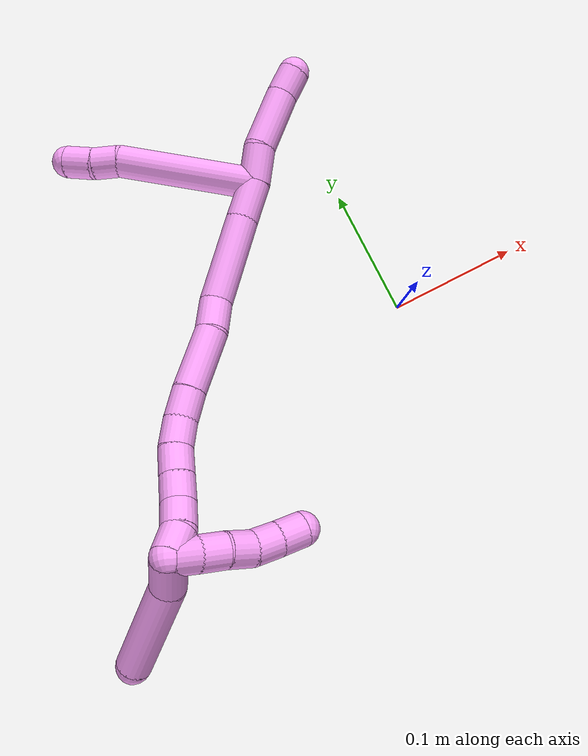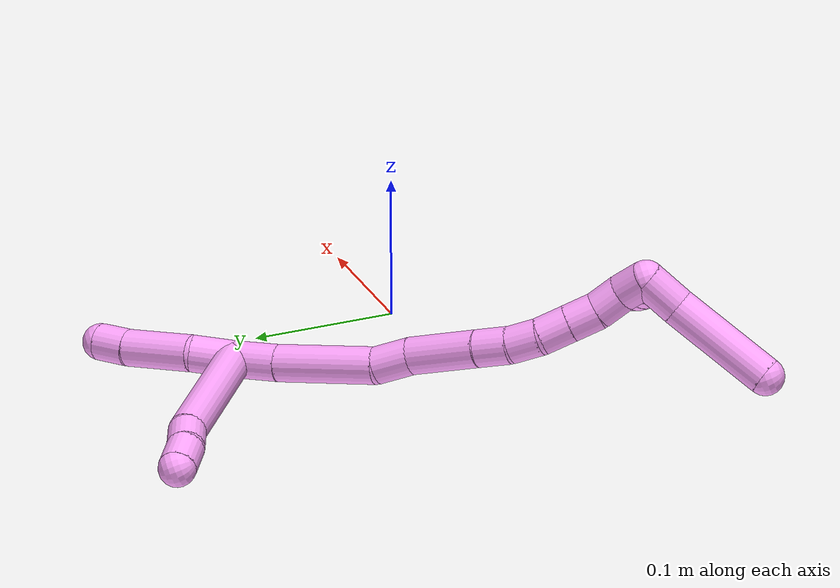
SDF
<sdf version="1.7">
 <world name="default">
  <model name="4">
   <static>0</static>
   <link name="4">
    <collision name="collision-cylinder-e_1_2_8">
     <pose>0.036772 -0.035987 0.015452 1.16523 0.753901 0.510332</pose>
     <geometry><cylinder><radius>0.0125</radius><length>0.107443</length></cylinder></geometry>
     <surface>
      <friction><ode><mu>1.16</mu><mu2>1.16</mu2><slip1>0</slip1><slip2>0</slip2></ode></friction>
      <contact><ode><kp>1e+06</kp><kd>1</kd><max_vel>0</max_vel><min_depth>0.001</min_depth></ode></contact>
     </surface>
    </collision>
    <visual name="visual-cylinder-e_1_2_8">
     <pose>0.036772 -0.035987 0.015452 1.16523 0.753901 0.510332</pose>
     <geometry><cylinder><radius>0.0125</radius><length>0.107443</length></cylinder></geometry>
     <material><ambient>1 0.65098 0.996078 1</ambient></material>
    </visual>
    <collision name="collision-cylinder-e_2_8_9">
     <pose>0.079487 -0.080102 0.031838 1.45625 0.628302 0.563911</pose>
     <geometry><cylinder><radius>0.0125</radius><length>0.020224</length></cylinder></geometry>
     <surface>
      <friction><ode><mu>1.16</mu><mu2>1.16</mu2><slip1>0</slip1><slip2>0</slip2></ode></friction>
      <contact><ode><kp>1e+06</kp><kd>1</kd><max_vel>0</max_vel><min_depth>0.001</min_depth></ode></contact>
     </surface>
    </collision>
    <visual name="visual-cylinder-e_2_8_9">
     <pose>0.079487 -0.080102 0.031838 1.45625 0.628302 0.563911</pose>
     <geometry><cylinder><radius>0.0125</radius><length>0.020224</length></cylinder></geometry>
     <material><ambient>1 0.65098 0.996078 1</ambient></material>
    </visual>
    <collision name="collision-cylinder-e_3_9_6">
     <pose>0.091705 -0.096861 0.036063 1.20672 0.596699 0.417645</pose>
     <geometry><cylinder><radius>0.0125</radius><length>0.022333</length></cylinder></geometry>
     <surface>
      <friction><ode><mu>1.16</mu><mu2>1.16</mu2><slip1>0</slip1><slip2>0</slip2></ode></friction>
      <contact><ode><kp>1e+06</kp><kd>1</kd><max_vel>0</max_vel><min_depth>0.001</min_depth></ode></contact>
     </surface>
    </collision>
    <visual name="visual-cylinder-e_3_9_6">
     <pose>0.091705 -0.096861 0.036063 1.20672 0.596699 0.417645</pose>
     <geometry><cylinder><radius>0.0125</radius><length>0.022333</length></cylinder></geometry>
     <material><ambient>1 0.65098 0.996078 1</ambient></material>
    </visual>
    <collision name="collision-cylinder-e_1_2_10">
     <pose>0.001768 0.006601 0.012688 -0.479701 0.12299 -0.030114</pose>
     <geometry><cylinder><radius>0.0125</radius><length>0.028822</length></cylinder></geometry>
     <surface>
      <friction><ode><mu>1.16</mu><mu2>1.16</mu2><slip1>0</slip1><slip2>0</slip2></ode></friction>
      <contact><ode><kp>1e+06</kp><kd>1</kd><max_vel>0</max_vel><min_depth>0.001</min_depth></ode></contact>
     </surface>
    </collision>
    <visual name="visual-cylinder-e_1_2_10">
     <pose>0.001768 0.006601 0.012688 -0.479701 0.12299 -0.030114</pose>
     <geometry><cylinder><radius>0.0125</radius><length>0.028822</length></cylinder></geometry>
     <material><ambient>1 0.65098 0.996078 1</ambient></material>
    </visual>
    <collision name="collision-cylinder-e_2_10_11">
     <pose>7e-06 0.025356 0.04614 -0.529604 -0.145631 0.039555</pose>
     <geometry><cylinder><radius>0.0125</radius><length>0.048635</length></cylinder></geometry>
     <surface>
      <friction><ode><mu>1.16</mu><mu2>1.16</mu2><slip1>0</slip1><slip2>0</slip2></ode></friction>
      <contact><ode><kp>1e+06</kp><kd>1</kd><max_vel>0</max_vel><min_depth>0.001</min_depth></ode></contact>
     </surface>
    </collision>
    <visual name="visual-cylinder-e_2_10_11">
     <pose>7e-06 0.025356 0.04614 -0.529604 -0.145631 0.039555</pose>
     <geometry><cylinder><radius>0.0125</radius><length>0.048635</length></cylinder></geometry>
     <material><ambient>1 0.65098 0.996078 1</ambient></material>
    </visual>
    <collision name="collision-cylinder-e_3_11_5">
     <pose>-0.005205 0.044184 0.075831 -0.641876 -0.149842 0.049895</pose>
     <geometry><cylinder><radius>0.0125</radius><length>0.022543</length></cylinder></geometry>
     <surface>
      <friction><ode><mu>1.16</mu><mu2>1.16</mu2><slip1>0</slip1><slip2>0</slip2></ode></friction>
      <contact><ode><kp>1e+06</kp><kd>1</kd><max_vel>0</max_vel><min_depth>0.001</min_depth></ode></contact>
     </surface>
    </collision>
    <visual name="visual-cylinder-e_3_11_5">
     <pose>-0.005205 0.044184 0.075831 -0.641876 -0.149842 0.049895</pose>
     <geometry><cylinder><radius>0.0125</radius><length>0.022543</length></cylinder></geometry>
     <material><ambient>1 0.65098 0.996078 1</ambient></material>
    </visual>
    <collision name="collision-cylinder-e_1_2_12">
     <pose>0.001191 -0.007728 -0.014082 2.63971 0.073997 0.286808</pose>
     <geometry><cylinder><radius>0.0125</radius><length>0.032215</length></cylinder></geometry>
     <surface>
      <friction><ode><mu>1.16</mu><mu2>1.16</mu2><slip1>0</slip1><slip2>0</slip2></ode></friction>
      <contact><ode><kp>1e+06</kp><kd>1</kd><max_vel>0</max_vel><min_depth>0.001</min_depth></ode></contact>
     </surface>
    </collision>
    <visual name="visual-cylinder-e_1_2_12">
     <pose>0.001191 -0.007728 -0.014082 2.63971 0.073997 0.286808</pose>
     <geometry><cylinder><radius>0.0125</radius><length>0.032215</length></cylinder></geometry>
     <material><ambient>1 0.65098 0.996078 1</ambient></material>
    </visual>
    <collision name="collision-cylinder-e_2_12_13">
     <pose>0.005713 -0.030483 -0.059303 2.69197 0.096045 0.414292</pose>
     <geometry><cylinder><radius>0.0125</radius><length>0.06947</length></cylinder></geometry>
     <surface>
      <friction><ode><mu>1.16</mu><mu2>1.16</mu2><slip1>0</slip1><slip2>0</slip2></ode></friction>
      <contact><ode><kp>1e+06</kp><kd>1</kd><max_vel>0</max_vel><min_depth>0.001</min_depth></ode></contact>
     </surface>
    </collision>
    <visual name="visual-cylinder-e_2_12_13">
     <pose>0.005713 -0.030483 -0.059303 2.69197 0.096045 0.414292</pose>
     <geometry><cylinder><radius>0.0125</radius><length>0.06947</length></cylinder></geometry>
     <material><ambient>1 0.65098 0.996078 1</ambient></material>
    </visual>
    <collision name="collision-cylinder-e_3_13_14">
     <pose>0.010849 -0.047564 -0.102762 2.97639 0.14354 1.43014</pose>
     <geometry><cylinder><radius>0.0125</radius><length>0.025241</length></cylinder></geometry>
     <surface>
      <friction><ode><mu>1.16</mu><mu2>1.16</mu2><slip1>0</slip1><slip2>0</slip2></ode></friction>
      <contact><ode><kp>1e+06</kp><kd>1</kd><max_vel>0</max_vel><min_depth>0.001</min_depth></ode></contact>
     </surface>
    </collision>
    <visual name="visual-cylinder-e_3_13_14">
     <pose>0.010849 -0.047564 -0.102762 2.97639 0.14354 1.43014</pose>
     <geometry><cylinder><radius>0.0125</radius><length>0.025241</length></cylinder></geometry>
     <material><ambient>1 0.65098 0.996078 1</ambient></material>
    </visual>
    <collision name="collision-cylinder-e_4_14_15">
     <pose>0.018045 -0.05809 -0.137132 2.77476 0.224371 1.09156</pose>
     <geometry><cylinder><radius>0.0125</radius><length>0.048457</length></cylinder></geometry>
     <surface>
      <friction><ode><mu>1.16</mu><mu2>1.16</mu2><slip1>0</slip1><slip2>0</slip2></ode></friction>
      <contact><ode><kp>1e+06</kp><kd>1</kd><max_vel>0</max_vel><min_depth>0.001</min_depth></ode></contact>
     </surface>
    </collision>
    <visual name="visual-cylinder-e_4_14_15">
     <pose>0.018045 -0.05809 -0.137132 2.77476 0.224371 1.09156</pose>
     <geometry><cylinder><radius>0.0125</radius><length>0.048457</length></cylinder></geometry>
     <material><ambient>1 0.65098 0.996078 1</ambient></material>
    </visual>
    <collision name="collision-cylinder-e_5_15_16">
     <pose>0.025153 -0.070319 -0.169763 2.80043 0.151739 0.831175</pose>
     <geometry><cylinder><radius>0.0125</radius><length>0.022717</length></cylinder></geometry>
     <surface>
      <friction><ode><mu>1.16</mu><mu2>1.16</mu2><slip1>0</slip1><slip2>0</slip2></ode></friction>
      <contact><ode><kp>1e+06</kp><kd>1</kd><max_vel>0</max_vel><min_depth>0.001</min_depth></ode></contact>
     </surface>
    </collision>
    <visual name="visual-cylinder-e_5_15_16">
     <pose>0.025153 -0.070319 -0.169763 2.80043 0.151739 0.831175</pose>
     <geometry><cylinder><radius>0.0125</radius><length>0.022717</length></cylinder></geometry>
     <material><ambient>1 0.65098 0.996078 1</ambient></material>
    </visual>
    <collision name="collision-cylinder-e_6_16_17">
     <pose>0.028512 -0.075769 -0.19066 2.97892 0.155797 1.52747</pose>
     <geometry><cylinder><radius>0.0125</radius><length>0.021166</length></cylinder></geometry>
     <surface>
      <friction><ode><mu>1.16</mu><mu2>1.16</mu2><slip1>0</slip1><slip2>0</slip2></ode></friction>
      <contact><ode><kp>1e+06</kp><kd>1</kd><max_vel>0</max_vel><min_depth>0.001</min_depth></ode></contact>
     </surface>
    </collision>
    <visual name="visual-cylinder-e_6_16_17">
     <pose>0.028512 -0.075769 -0.19066 2.97892 0.155797 1.52747</pose>
     <geometry><cylinder><radius>0.0125</radius><length>0.021166</length></cylinder></geometry>
     <material><ambient>1 0.65098 0.996078 1</ambient></material>
    </visual>
    <collision name="collision-cylinder-e_7_17_18">
     <pose>0.030757 -0.077 -0.211249 -3.09664 0.058607 -1.83305</pose>
     <geometry><cylinder><radius>0.0125</radius><length>0.0206</length></cylinder></geometry>
     <surface>
      <friction><ode><mu>1.16</mu><mu2>1.16</mu2><slip1>0</slip1><slip2>0</slip2></ode></friction>
      <contact><ode><kp>1e+06</kp><kd>1</kd><max_vel>0</max_vel><min_depth>0.001</min_depth></ode></contact>
     </surface>
    </collision>
    <visual name="visual-cylinder-e_7_17_18">
     <pose>0.030757 -0.077 -0.211249 -3.09664 0.058607 -1.83305</pose>
     <geometry><cylinder><radius>0.0125</radius><length>0.0206</length></cylinder></geometry>
     <material><ambient>1 0.65098 0.996078 1</ambient></material>
    </visual>
    <collision name="collision-cylinder-e_8_18_19">
     <pose>0.031943 -0.076072 -0.231539 -3.0951 0.05805 -1.79112</pose>
     <geometry><cylinder><radius>0.0125</radius><length>0.020093</length></cylinder></geometry>
     <surface>
      <friction><ode><mu>1.16</mu><mu2>1.16</mu2><slip1>0</slip1><slip2>0</slip2></ode></friction>
      <contact><ode><kp>1e+06</kp><kd>1</kd><max_vel>0</max_vel><min_depth>0.001</min_depth></ode></contact>
     </surface>
    </collision>
    <visual name="visual-cylinder-e_8_18_19">
     <pose>0.031943 -0.076072 -0.231539 -3.0951 0.05805 -1.79112</pose>
     <geometry><cylinder><radius>0.0125</radius><length>0.020093</length></cylinder></geometry>
     <material><ambient>1 0.65098 0.996078 1</ambient></material>
    </visual>
    <collision name="collision-cylinder-e_9_19_20">
     <pose>0.034799 -0.073798 -0.251136 -2.95509 0.229135 -1.77669</pose>
     <geometry><cylinder><radius>0.0125</radius><length>0.020018</length></cylinder></geometry>
     <surface>
      <friction><ode><mu>1.16</mu><mu2>1.16</mu2><slip1>0</slip1><slip2>0</slip2></ode></friction>
      <contact><ode><kp>1e+06</kp><kd>1</kd><max_vel>0</max_vel><min_depth>0.001</min_depth></ode></contact>
     </surface>
    </collision>
    <visual name="visual-cylinder-e_9_19_20">
     <pose>0.034799 -0.073798 -0.251136 -2.95509 0.229135 -1.77669</pose>
     <geometry><cylinder><radius>0.0125</radius><length>0.020018</length></cylinder></geometry>
     <material><ambient>1 0.65098 0.996078 1</ambient></material>
    </visual>
    <collision name="collision-cylinder-e_10_20_1">
     <pose>0.041632 -0.072495 -0.269614 3.08499 0.472814 2.90765</pose>
     <geometry><cylinder><radius>0.0125</radius><length>0.020024</length></cylinder></geometry>
     <surface>
      <friction><ode><mu>1.16</mu><mu2>1.16</mu2><slip1>0</slip1><slip2>0</slip2></ode></friction>
      <contact><ode><kp>1e+06</kp><kd>1</kd><max_vel>0</max_vel><min_depth>0.001</min_depth></ode></contact>
     </surface>
    </collision>
    <visual name="visual-cylinder-e_10_20_1">
     <pose>0.041632 -0.072495 -0.269614 3.08499 0.472814 2.90765</pose>
     <geometry><cylinder><radius>0.0125</radius><length>0.020024</length></cylinder></geometry>
     <material><ambient>1 0.65098 0.996078 1</ambient></material>
    </visual>
    <collision name="collision-cylinder-e_1_1_21">
     <pose>0.036666 -0.070186 -0.277357 -1.18097 -1.26171 0.910541</pose>
     <geometry><cylinder><radius>0.0125</radius><length>0.02</length></cylinder></geometry>
     <surface>
      <friction><ode><mu>1.16</mu><mu2>1.16</mu2><slip1>0</slip1><slip2>0</slip2></ode></friction>
      <contact><ode><kp>1e+06</kp><kd>1</kd><max_vel>0</max_vel><min_depth>0.001</min_depth></ode></contact>
     </surface>
    </collision>
    <visual name="visual-cylinder-e_1_1_21">
     <pose>0.036666 -0.070186 -0.277357 -1.18097 -1.26171 0.910541</pose>
     <geometry><cylinder><radius>0.0125</radius><length>0.02</length></cylinder></geometry>
     <material><ambient>1 0.65098 0.996078 1</ambient></material>
    </visual>
    <collision name="collision-cylinder-e_2_21_22">
     <pose>0.018091 -0.06326 -0.275097 -1.30831 -1.13099 0.905784</pose>
     <geometry><cylinder><radius>0.0125</radius><length>0.02</length></cylinder></geometry>
     <surface>
      <friction><ode><mu>1.16</mu><mu2>1.16</mu2><slip1>0</slip1><slip2>0</slip2></ode></friction>
      <contact><ode><kp>1e+06</kp><kd>1</kd><max_vel>0</max_vel><min_depth>0.001</min_depth></ode></contact>
     </surface>
    </collision>
    <visual name="visual-cylinder-e_2_21_22">
     <pose>0.018091 -0.06326 -0.275097 -1.30831 -1.13099 0.905784</pose>
     <geometry><cylinder><radius>0.0125</radius><length>0.02</length></cylinder></geometry>
     <material><ambient>1 0.65098 0.996078 1</ambient></material>
    </visual>
    <collision name="collision-cylinder-e_3_22_23">
     <pose>-0.000585 -0.056559 -0.273214 -1.27884 -1.29701 1.0264</pose>
     <geometry><cylinder><radius>0.0125</radius><length>0.02</length></cylinder></geometry>
     <surface>
      <friction><ode><mu>1.16</mu><mu2>1.16</mu2><slip1>0</slip1><slip2>0</slip2></ode></friction>
      <contact><ode><kp>1e+06</kp><kd>1</kd><max_vel>0</max_vel><min_depth>0.001</min_depth></ode></contact>
     </surface>
    </collision>
    <visual name="visual-cylinder-e_3_22_23">
     <pose>-0.000585 -0.056559 -0.273214 -1.27884 -1.29701 1.0264</pose>
     <geometry><cylinder><radius>0.0125</radius><length>0.02</length></cylinder></geometry>
     <material><ambient>1 0.65098 0.996078 1</ambient></material>
    </visual>
    <collision name="collision-cylinder-e_4_23_24">
     <pose>-0.018778 -0.049714 -0.269518 -0.969825 -1.0286 0.578678</pose>
     <geometry><cylinder><radius>0.0125</radius><length>0.02</length></cylinder></geometry>
     <surface>
      <friction><ode><mu>1.16</mu><mu2>1.16</mu2><slip1>0</slip1><slip2>0</slip2></ode></friction>
      <contact><ode><kp>1e+06</kp><kd>1</kd><max_vel>0</max_vel><min_depth>0.001</min_depth></ode></contact>
     </surface>
    </collision>
    <visual name="visual-cylinder-e_4_23_24">
     <pose>-0.018778 -0.049714 -0.269518 -0.969825 -1.0286 0.578678</pose>
     <geometry><cylinder><radius>0.0125</radius><length>0.02</length></cylinder></geometry>
     <material><ambient>1 0.65098 0.996078 1</ambient></material>
    </visual>
    <collision name="collision-cylinder-e_5_24_4">
     <pose>-0.035555 -0.040683 -0.263472 -0.990925 -0.963321 0.550638</pose>
     <geometry><cylinder><radius>0.0125</radius><length>0.02</length></cylinder></geometry>
     <surface>
      <friction><ode><mu>1.16</mu><mu2>1.16</mu2><slip1>0</slip1><slip2>0</slip2></ode></friction>
      <contact><ode><kp>1e+06</kp><kd>1</kd><max_vel>0</max_vel><min_depth>0.001</min_depth></ode></contact>
     </surface>
    </collision>
    <visual name="visual-cylinder-e_5_24_4">
     <pose>-0.035555 -0.040683 -0.263472 -0.990925 -0.963321 0.550638</pose>
     <geometry><cylinder><radius>0.0125</radius><length>0.02</length></cylinder></geometry>
     <material><ambient>1 0.65098 0.996078 1</ambient></material>
    </visual>
    <collision name="collision-cylinder-e_1_1_25">
     <pose>0.038596 -0.082571 -0.284779 2.15041 -0.586114 -1.0182</pose>
     <geometry><cylinder><radius>0.0125</radius><length>0.027465</length></cylinder></geometry>
     <surface>
      <friction><ode><mu>1.16</mu><mu2>1.16</mu2><slip1>0</slip1><slip2>0</slip2></ode></friction>
      <contact><ode><kp>1e+06</kp><kd>1</kd><max_vel>0</max_vel><min_depth>0.001</min_depth></ode></contact>
     </surface>
    </collision>
    <visual name="visual-cylinder-e_1_1_25">
     <pose>0.038596 -0.082571 -0.284779 2.15041 -0.586114 -1.0182</pose>
     <geometry><cylinder><radius>0.0125</radius><length>0.027465</length></cylinder></geometry>
     <material><ambient>1 0.65098 0.996078 1</ambient></material>
    </visual>
    <collision name="collision-cylinder-e_2_25_3">
     <pose>0.022189 -0.121997 -0.309659 2.1283 -0.245412 -0.437341</pose>
     <geometry><cylinder><radius>0.0125</radius><length>0.072535</length></cylinder></geometry>
     <surface>
      <friction><ode><mu>1.16</mu><mu2>1.16</mu2><slip1>0</slip1><slip2>0</slip2></ode></friction>
      <contact><ode><kp>1e+06</kp><kd>1</kd><max_vel>0</max_vel><min_depth>0.001</min_depth></ode></contact>
     </surface>
    </collision>
    <visual name="visual-cylinder-e_2_25_3">
     <pose>0.022189 -0.121997 -0.309659 2.1283 -0.245412 -0.437341</pose>
     <geometry><cylinder><radius>0.0125</radius><length>0.072535</length></cylinder></geometry>
     <material><ambient>1 0.65098 0.996078 1</ambient></material>
    </visual>
    <collision name="collision-sphere-3">
     <pose>0.013377 -0.151851 -0.328272 0 -0 0</pose>
     <geometry><sphere><radius>0.0125</radius></sphere></geometry>
     <surface>
      <friction><ode><mu>1.16</mu><mu2>1.16</mu2><slip1>0</slip1><slip2>0</slip2></ode></friction>
      <contact><ode><kp>1e+06</kp><kd>1</kd><max_vel>0</max_vel><min_depth>0.001</min_depth></ode></contact>
     </surface>
    </collision>
    <visual name="visual-sphere-3">
     <pose>0.013377 -0.151851 -0.328272 0 -0 0</pose>
     <geometry><sphere><radius>0.0125</radius></sphere></geometry>
     <material><ambient>1 0.65098 0.996078 1</ambient></material>
    </visual>
    <collision name="collision-sphere-25">
     <pose>0.031 -0.092144 -0.291045 0 -0 0</pose>
     <geometry><sphere><radius>0.0125</radius></sphere></geometry>
     <surface>
      <friction><ode><mu>1.16</mu><mu2>1.16</mu2><slip1>0</slip1><slip2>0</slip2></ode></friction>
      <contact><ode><kp>1e+06</kp><kd>1</kd><max_vel>0</max_vel><min_depth>0.001</min_depth></ode></contact>
     </surface>
    </collision>
    <visual name="visual-sphere-25">
     <pose>0.031 -0.092144 -0.291045 0 -0 0</pose>
     <geometry><sphere><radius>0.0125</radius></sphere></geometry>
     <material><ambient>1 0.65098 0.996078 1</ambient></material>
    </visual>
    <collision name="collision-sphere-4">
     <pose>-0.043766 -0.035908 -0.260345 0 -0 0</pose>
     <geometry><sphere><radius>0.0125</radius></sphere></geometry>
     <surface>
      <friction><ode><mu>1.16</mu><mu2>1.16</mu2><slip1>0</slip1><slip2>0</slip2></ode></friction>
      <contact><ode><kp>1e+06</kp><kd>1</kd><max_vel>0</max_vel><min_depth>0.001</min_depth></ode></contact>
     </surface>
    </collision>
    <visual name="visual-sphere-4">
     <pose>-0.043766 -0.035908 -0.260345 0 -0 0</pose>
     <geometry><sphere><radius>0.0125</radius></sphere></geometry>
     <material><ambient>1 0.65098 0.996078 1</ambient></material>
    </visual>
    <collision name="collision-sphere-24">
     <pose>-0.027344 -0.045458 -0.2666 0 -0 0</pose>
     <geometry><sphere><radius>0.0125</radius></sphere></geometry>
     <surface>
      <friction><ode><mu>1.16</mu><mu2>1.16</mu2><slip1>0</slip1><slip2>0</slip2></ode></friction>
      <contact><ode><kp>1e+06</kp><kd>1</kd><max_vel>0</max_vel><min_depth>0.001</min_depth></ode></contact>
     </surface>
    </collision>
    <visual name="visual-sphere-24">
     <pose>-0.027344 -0.045458 -0.2666 0 -0 0</pose>
     <geometry><sphere><radius>0.0125</radius></sphere></geometry>
     <material><ambient>1 0.65098 0.996078 1</ambient></material>
    </visual>
    <collision name="collision-sphere-23">
     <pose>-0.010212 -0.05397 -0.272435 0 -0 0</pose>
     <geometry><sphere><radius>0.0125</radius></sphere></geometry>
     <surface>
      <friction><ode><mu>1.16</mu><mu2>1.16</mu2><slip1>0</slip1><slip2>0</slip2></ode></friction>
      <contact><ode><kp>1e+06</kp><kd>1</kd><max_vel>0</max_vel><min_depth>0.001</min_depth></ode></contact>
     </surface>
    </collision>
    <visual name="visual-sphere-23">
     <pose>-0.010212 -0.05397 -0.272435 0 -0 0</pose>
     <geometry><sphere><radius>0.0125</radius></sphere></geometry>
     <material><ambient>1 0.65098 0.996078 1</ambient></material>
    </visual>
    <collision name="collision-sphere-22">
     <pose>0.009043 -0.059148 -0.273992 0 -0 0</pose>
     <geometry><sphere><radius>0.0125</radius></sphere></geometry>
     <surface>
      <friction><ode><mu>1.16</mu><mu2>1.16</mu2><slip1>0</slip1><slip2>0</slip2></ode></friction>
      <contact><ode><kp>1e+06</kp><kd>1</kd><max_vel>0</max_vel><min_depth>0.001</min_depth></ode></contact>
     </surface>
    </collision>
    <visual name="visual-sphere-22">
     <pose>0.009043 -0.059148 -0.273992 0 -0 0</pose>
     <geometry><sphere><radius>0.0125</radius></sphere></geometry>
     <material><ambient>1 0.65098 0.996078 1</ambient></material>
    </visual>
    <collision name="collision-sphere-21">
     <pose>0.02714 -0.067372 -0.276201 0 -0 0</pose>
     <geometry><sphere><radius>0.0125</radius></sphere></geometry>
     <surface>
      <friction><ode><mu>1.16</mu><mu2>1.16</mu2><slip1>0</slip1><slip2>0</slip2></ode></friction>
      <contact><ode><kp>1e+06</kp><kd>1</kd><max_vel>0</max_vel><min_depth>0.001</min_depth></ode></contact>
     </surface>
    </collision>
    <visual name="visual-sphere-21">
     <pose>0.02714 -0.067372 -0.276201 0 -0 0</pose>
     <geometry><sphere><radius>0.0125</radius></sphere></geometry>
     <material><ambient>1 0.65098 0.996078 1</ambient></material>
    </visual>
    <collision name="collision-sphere-1">
     <pose>0.046192 -0.072999 -0.278513 0 -0 0</pose>
     <geometry><sphere><radius>0.0125</radius></sphere></geometry>
     <surface>
      <friction><ode><mu>1.16</mu><mu2>1.16</mu2><slip1>0</slip1><slip2>0</slip2></ode></friction>
      <contact><ode><kp>1e+06</kp><kd>1</kd><max_vel>0</max_vel><min_depth>0.001</min_depth></ode></contact>
     </surface>
    </collision>
    <visual name="visual-sphere-1">
     <pose>0.046192 -0.072999 -0.278513 0 -0 0</pose>
     <geometry><sphere><radius>0.0125</radius></sphere></geometry>
     <material><ambient>1 0.65098 0.996078 1</ambient></material>
    </visual>
    <collision name="collision-sphere-11">
     <pose>-0.003522 0.037511 0.066904 0 -0 0</pose>
     <geometry><sphere><radius>0.0125</radius></sphere></geometry>
     <surface>
      <friction><ode><mu>1.16</mu><mu2>1.16</mu2><slip1>0</slip1><slip2>0</slip2></ode></friction>
      <contact><ode><kp>1e+06</kp><kd>1</kd><max_vel>0</max_vel><min_depth>0.001</min_depth></ode></contact>
     </surface>
    </collision>
    <visual name="visual-sphere-11">
     <pose>-0.003522 0.037511 0.066904 0 -0 0</pose>
     <geometry><sphere><radius>0.0125</radius></sphere></geometry>
     <material><ambient>1 0.65098 0.996078 1</ambient></material>
    </visual>
    <collision name="collision-sphere-10">
     <pose>0.003536 0.013201 0.025375 0 -0 0</pose>
     <geometry><sphere><radius>0.0125</radius></sphere></geometry>
     <surface>
      <friction><ode><mu>1.16</mu><mu2>1.16</mu2><slip1>0</slip1><slip2>0</slip2></ode></friction>
      <contact><ode><kp>1e+06</kp><kd>1</kd><max_vel>0</max_vel><min_depth>0.001</min_depth></ode></contact>
     </surface>
    </collision>
    <visual name="visual-sphere-10">
     <pose>0.003536 0.013201 0.025375 0 -0 0</pose>
     <geometry><sphere><radius>0.0125</radius></sphere></geometry>
     <material><ambient>1 0.65098 0.996078 1</ambient></material>
    </visual>
    <collision name="collision-sphere-6">
     <pose>0.09798 -0.105492 0.039352 0 -0 0</pose>
     <geometry><sphere><radius>0.0125</radius></sphere></geometry>
     <surface>
      <friction><ode><mu>1.16</mu><mu2>1.16</mu2><slip1>0</slip1><slip2>0</slip2></ode></friction>
      <contact><ode><kp>1e+06</kp><kd>1</kd><max_vel>0</max_vel><min_depth>0.001</min_depth></ode></contact>
     </surface>
    </collision>
    <visual name="visual-sphere-6">
     <pose>0.09798 -0.105492 0.039352 0 -0 0</pose>
     <geometry><sphere><radius>0.0125</radius></sphere></geometry>
     <material><ambient>1 0.65098 0.996078 1</ambient></material>
    </visual>
    <collision name="collision-sphere-9">
     <pose>0.08543 -0.088229 0.032774 0 -0 0</pose>
     <geometry><sphere><radius>0.0125</radius></sphere></geometry>
     <surface>
      <friction><ode><mu>1.16</mu><mu2>1.16</mu2><slip1>0</slip1><slip2>0</slip2></ode></friction>
      <contact><ode><kp>1e+06</kp><kd>1</kd><max_vel>0</max_vel><min_depth>0.001</min_depth></ode></contact>
     </surface>
    </collision>
    <visual name="visual-sphere-9">
     <pose>0.08543 -0.088229 0.032774 0 -0 0</pose>
     <geometry><sphere><radius>0.0125</radius></sphere></geometry>
     <material><ambient>1 0.65098 0.996078 1</ambient></material>
    </visual>
    <collision name="collision-sphere-2">
     <geometry><sphere><radius>0.0125</radius></sphere></geometry>
     <surface>
      <friction><ode><mu>1.16</mu><mu2>1.16</mu2><slip1>0</slip1><slip2>0</slip2></ode></friction>
      <contact><ode><kp>1e+06</kp><kd>1</kd><max_vel>0</max_vel><min_depth>0.001</min_depth></ode></contact>
     </surface>
    </collision>
    <visual name="visual-sphere-2">
     <geometry><sphere><radius>0.0125</radius></sphere></geometry>
     <material><ambient>1 0.65098 0.996078 1</ambient></material>
    </visual>
    <collision name="collision-sphere-19">
     <pose>0.032526 -0.075606 -0.241558 0 -0 0</pose>
     <geometry><sphere><radius>0.0125</radius></sphere></geometry>
     <surface>
      <friction><ode><mu>1.16</mu><mu2>1.16</mu2><slip1>0</slip1><slip2>0</slip2></ode></friction>
      <contact><ode><kp>1e+06</kp><kd>1</kd><max_vel>0</max_vel><min_depth>0.001</min_depth></ode></contact>
     </surface>
    </collision>
    <visual name="visual-sphere-19">
     <pose>0.032526 -0.075606 -0.241558 0 -0 0</pose>
     <geometry><sphere><radius>0.0125</radius></sphere></geometry>
     <material><ambient>1 0.65098 0.996078 1</ambient></material>
    </visual>
    <collision name="collision-sphere-8">
     <pose>0.073543 -0.071975 0.030903 0 -0 0</pose>
     <geometry><sphere><radius>0.0125</radius></sphere></geometry>
     <surface>
      <friction><ode><mu>1.16</mu><mu2>1.16</mu2><slip1>0</slip1><slip2>0</slip2></ode></friction>
      <contact><ode><kp>1e+06</kp><kd>1</kd><max_vel>0</max_vel><min_depth>0.001</min_depth></ode></contact>
     </surface>
    </collision>
    <visual name="visual-sphere-8">
     <pose>0.073543 -0.071975 0.030903 0 -0 0</pose>
     <geometry><sphere><radius>0.0125</radius></sphere></geometry>
     <material><ambient>1 0.65098 0.996078 1</ambient></material>
    </visual>
    <collision name="collision-sphere-5">
     <pose>-0.006887 0.050856 0.084758 0 -0 0</pose>
     <geometry><sphere><radius>0.0125</radius></sphere></geometry>
     <surface>
      <friction><ode><mu>1.16</mu><mu2>1.16</mu2><slip1>0</slip1><slip2>0</slip2></ode></friction>
      <contact><ode><kp>1e+06</kp><kd>1</kd><max_vel>0</max_vel><min_depth>0.001</min_depth></ode></contact>
     </surface>
    </collision>
    <visual name="visual-sphere-5">
     <pose>-0.006887 0.050856 0.084758 0 -0 0</pose>
     <geometry><sphere><radius>0.0125</radius></sphere></geometry>
     <material><ambient>1 0.65098 0.996078 1</ambient></material>
    </visual>
    <collision name="collision-sphere-12">
     <pose>0.002382 -0.015455 -0.028165 0 -0 0</pose>
     <geometry><sphere><radius>0.0125</radius></sphere></geometry>
     <surface>
      <friction><ode><mu>1.16</mu><mu2>1.16</mu2><slip1>0</slip1><slip2>0</slip2></ode></friction>
      <contact><ode><kp>1e+06</kp><kd>1</kd><max_vel>0</max_vel><min_depth>0.001</min_depth></ode></contact>
     </surface>
    </collision>
    <visual name="visual-sphere-12">
     <pose>0.002382 -0.015455 -0.028165 0 -0 0</pose>
     <geometry><sphere><radius>0.0125</radius></sphere></geometry>
     <material><ambient>1 0.65098 0.996078 1</ambient></material>
    </visual>
    <collision name="collision-sphere-13">
     <pose>0.009044 -0.04551 -0.090441 0 -0 0</pose>
     <geometry><sphere><radius>0.0125</radius></sphere></geometry>
     <surface>
      <friction><ode><mu>1.16</mu><mu2>1.16</mu2><slip1>0</slip1><slip2>0</slip2></ode></friction>
      <contact><ode><kp>1e+06</kp><kd>1</kd><max_vel>0</max_vel><min_depth>0.001</min_depth></ode></contact>
     </surface>
    </collision>
    <visual name="visual-sphere-13">
     <pose>0.009044 -0.04551 -0.090441 0 -0 0</pose>
     <geometry><sphere><radius>0.0125</radius></sphere></geometry>
     <material><ambient>1 0.65098 0.996078 1</ambient></material>
    </visual>
    <collision name="collision-sphere-14">
     <pose>0.012654 -0.049618 -0.115082 0 -0 0</pose>
     <geometry><sphere><radius>0.0125</radius></sphere></geometry>
     <surface>
      <friction><ode><mu>1.16</mu><mu2>1.16</mu2><slip1>0</slip1><slip2>0</slip2></ode></friction>
      <contact><ode><kp>1e+06</kp><kd>1</kd><max_vel>0</max_vel><min_depth>0.001</min_depth></ode></contact>
     </surface>
    </collision>
    <visual name="visual-sphere-14">
     <pose>0.012654 -0.049618 -0.115082 0 -0 0</pose>
     <geometry><sphere><radius>0.0125</radius></sphere></geometry>
     <material><ambient>1 0.65098 0.996078 1</ambient></material>
    </visual>
    <collision name="collision-sphere-15">
     <pose>0.023436 -0.066562 -0.159182 0 -0 0</pose>
     <geometry><sphere><radius>0.0125</radius></sphere></geometry>
     <surface>
      <friction><ode><mu>1.16</mu><mu2>1.16</mu2><slip1>0</slip1><slip2>0</slip2></ode></friction>
      <contact><ode><kp>1e+06</kp><kd>1</kd><max_vel>0</max_vel><min_depth>0.001</min_depth></ode></contact>
     </surface>
    </collision>
    <visual name="visual-sphere-15">
     <pose>0.023436 -0.066562 -0.159182 0 -0 0</pose>
     <geometry><sphere><radius>0.0125</radius></sphere></geometry>
     <material><ambient>1 0.65098 0.996078 1</ambient></material>
    </visual>
    <collision name="collision-sphere-16">
     <pose>0.026869 -0.074076 -0.180344 0 -0 0</pose>
     <geometry><sphere><radius>0.0125</radius></sphere></geometry>
     <surface>
      <friction><ode><mu>1.16</mu><mu2>1.16</mu2><slip1>0</slip1><slip2>0</slip2></ode></friction>
      <contact><ode><kp>1e+06</kp><kd>1</kd><max_vel>0</max_vel><min_depth>0.001</min_depth></ode></contact>
     </surface>
    </collision>
    <visual name="visual-sphere-16">
     <pose>0.026869 -0.074076 -0.180344 0 -0 0</pose>
     <geometry><sphere><radius>0.0125</radius></sphere></geometry>
     <material><ambient>1 0.65098 0.996078 1</ambient></material>
    </visual>
    <collision name="collision-sphere-17">
     <pose>0.030154 -0.077462 -0.200977 0 -0 0</pose>
     <geometry><sphere><radius>0.0125</radius></sphere></geometry>
     <surface>
      <friction><ode><mu>1.16</mu><mu2>1.16</mu2><slip1>0</slip1><slip2>0</slip2></ode></friction>
      <contact><ode><kp>1e+06</kp><kd>1</kd><max_vel>0</max_vel><min_depth>0.001</min_depth></ode></contact>
     </surface>
    </collision>
    <visual name="visual-sphere-17">
     <pose>0.030154 -0.077462 -0.200977 0 -0 0</pose>
     <geometry><sphere><radius>0.0125</radius></sphere></geometry>
     <material><ambient>1 0.65098 0.996078 1</ambient></material>
    </visual>
    <collision name="collision-sphere-18">
     <pose>0.03136 -0.076538 -0.221521 0 -0 0</pose>
     <geometry><sphere><radius>0.0125</radius></sphere></geometry>
     <surface>
      <friction><ode><mu>1.16</mu><mu2>1.16</mu2><slip1>0</slip1><slip2>0</slip2></ode></friction>
      <contact><ode><kp>1e+06</kp><kd>1</kd><max_vel>0</max_vel><min_depth>0.001</min_depth></ode></contact>
     </surface>
    </collision>
    <visual name="visual-sphere-18">
     <pose>0.03136 -0.076538 -0.221521 0 -0 0</pose>
     <geometry><sphere><radius>0.0125</radius></sphere></geometry>
     <material><ambient>1 0.65098 0.996078 1</ambient></material>
    </visual>
    <collision name="collision-sphere-20">
     <pose>0.037073 -0.071991 -0.260714 0 -0 0</pose>
     <geometry><sphere><radius>0.0125</radius></sphere></geometry>
     <surface>
      <friction><ode><mu>1.16</mu><mu2>1.16</mu2><slip1>0</slip1><slip2>0</slip2></ode></friction>
      <contact><ode><kp>1e+06</kp><kd>1</kd><max_vel>0</max_vel><min_depth>0.001</min_depth></ode></contact>
     </surface>
    </collision>
    <visual name="visual-sphere-20">
     <pose>0.037073 -0.071991 -0.260714 0 -0 0</pose>
     <geometry><sphere><radius>0.0125</radius></sphere></geometry>
     <material><ambient>1 0.65098 0.996078 1</ambient></material>
    </visual>
    <inertial>
     <pose>0.021028 -0.050109 -0.121548 0 -0 0</pose>
     <mass>0.75</mass>
     <inertia><ixx>0.000209</ixx><ixy>0</ixy><ixz>0</ixz><iyy>8.5e-05</iyy><iyz>0</iyz><izz>3.4e-05</izz></inertia>
    </inertial>
   </link>
   <pose>-0.057072 0.136508 0.017121 2.11944 -0.807337 2.39271</pose>
  </model>
 </world>
</sdf>
